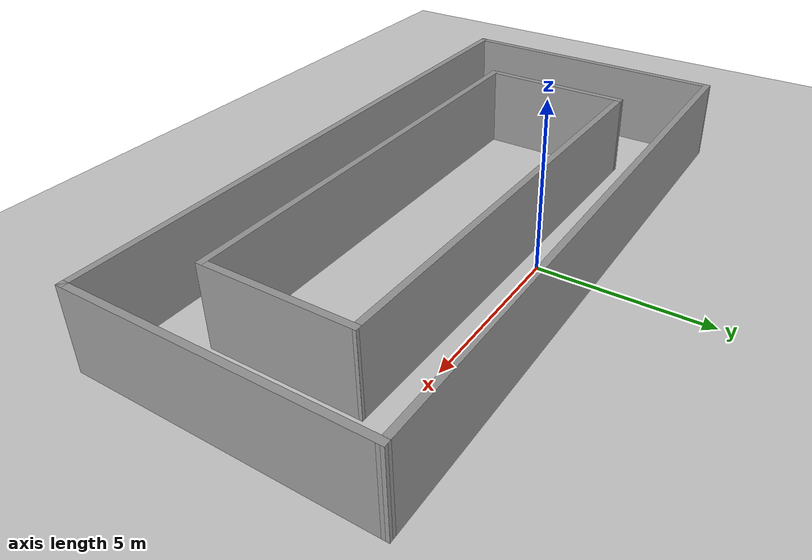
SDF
<sdf version="1.4">
 <world name="default">
  <light name="sun" type="directional">
   <pose>0 0 10 0 -0 0</pose>
   <diffuse>0.8 0.8 0.8 1</diffuse>
   <specular>0.2 0.2 0.2 1</specular>
   <attenuation>
    <range>1000</range>
    <constant>0.9</constant>
    <linear>0.01</linear>
    <quadratic>0.001</quadratic>
   </attenuation>
   <direction>-0.5 0.1 -0.9</direction>
  </light>
  <model name="ground_plane">
   <static>1</static>
   <link name="link">
    <collision name="collision">
     <geometry><plane><normal>0 0 1</normal><size>100 100</size></plane></geometry>
     <surface><friction><ode><mu>100</mu><mu2>50</mu2></ode></friction></surface>
    </collision>
    <visual name="visual">
     <cast_shadows>0</cast_shadows>
     <geometry><plane><normal>0 0 1</normal><size>100 100</size></plane></geometry>
     <material>
      <script><uri>file://media/materials/scripts/gazebo.material</uri><name>Gazebo/Grey</name></script>
     </material>
    </visual>
    <velocity_decay><linear>0</linear><angular>0</angular></velocity_decay>
   </link>
  </model>
  <physics type="ode">
   <max_step_size>0.001</max_step_size>
   <real_time_factor>1</real_time_factor>
   <real_time_update_rate>1000</real_time_update_rate>
   <gravity>0 0 -9.8</gravity>
  </physics>
  <scene><ambient>0.4 0.4 0.4 1</ambient><background>0.7 0.7 0.7 1</background><shadows>1</shadows></scene>
  <spherical_coordinates>
   <surface_model>EARTH_WGS84</surface_model>
   <latitude_deg>0</latitude_deg>
   <longitude_deg>0</longitude_deg>
   <elevation>0</elevation>
   <heading_deg>0</heading_deg>
  </spherical_coordinates>
  <model name="BuildingDefaultName">
   <link name="Wall_0">
    <collision name="Wall_0_Collision">
     <geometry><box><size>8.68893 0.2 2.5</size></box></geometry>
     <pose>0 0 1.25 0 -0 0</pose>
    </collision>
    <visual name="Wall_0_Visual">
     <pose>0 0 1.25 0 -0 0</pose>
     <geometry><box><size>8.68893 0.2 2.5</size></box></geometry>
     <material>
      <script><uri>file://media/materials/scripts/gazebo.material</uri><name>Gazebo/Grey</name></script>
     </material>
    </visual>
    <velocity_decay><linear>0</linear><angular>0</angular></velocity_decay>
    <pose>-9.03026 -2.72452 0 0 0 -1.5708</pose>
   </link>
   <link name="Wall_1">
    <collision name="Wall_1_Collision">
     <geometry><box><size>18.4732 0.2 2.5</size></box></geometry>
     <pose>0 0 1.25 0 -0 0</pose>
    </collision>
    <visual name="Wall_1_Visual">
     <pose>0 0 1.25 0 -0 0</pose>
     <geometry><box><size>18.4732 0.2 2.5</size></box></geometry>
     <material>
      <script><uri>file://media/materials/scripts/gazebo.material</uri><name>Gazebo/Grey</name></script>
     </material>
    </visual>
    <velocity_decay><linear>0</linear><angular>0</angular></velocity_decay>
    <pose>0.106327 -6.96899 0 0 -0 0</pose>
   </link>
   <link name="Wall_2">
    <collision name="Wall_2_Collision">
     <geometry><box><size>8.78145 0.2 2.5</size></box></geometry>
     <pose>0 0 1.25 0 -0 0</pose>
    </collision>
    <visual name="Wall_2_Visual">
     <pose>0 0 1.25 0 -0 0</pose>
     <geometry><box><size>8.78145 0.2 2.5</size></box></geometry>
     <material>
      <script><uri>file://media/materials/scripts/gazebo.material</uri><name>Gazebo/Grey</name></script>
     </material>
    </visual>
    <velocity_decay><linear>0</linear><angular>0</angular></velocity_decay>
    <pose>9.24292 -2.67826 0 0 -0 1.5708</pose>
   </link>
   <link name="Wall_3">
    <collision name="Wall_3_Collision">
     <geometry><box><size>18.4734 0.2 2.5</size></box></geometry>
     <pose>0 0 1.25 0 -0 0</pose>
    </collision>
    <visual name="Wall_3_Visual">
     <pose>0 0 1.25 0 -0 0</pose>
     <geometry><box><size>18.4734 0.2 2.5</size></box></geometry>
     <material>
      <script><uri>file://media/materials/scripts/gazebo.material</uri><name>Gazebo/Grey</name></script>
     </material>
    </visual>
    <velocity_decay><linear>0</linear><angular>0</angular></velocity_decay>
    <pose>0.106327 1.5662 0 0 0 -3.13653</pose>
   </link>
   <link name="Wall_5">
    <collision name="Wall_5_Collision">
     <geometry><box><size>4.7336 0.2 2.5</size></box></geometry>
     <pose>0 0 1.25 0 -0 0</pose>
    </collision>
    <visual name="Wall_5_Visual">
     <pose>0 0 1.25 0 -0 0</pose>
     <geometry><box><size>4.7336 0.2 2.5</size></box></geometry>
     <material>
      <script><uri>file://media/materials/scripts/gazebo.material</uri><name>Gazebo/Grey</name></script>
     </material>
    </visual>
    <velocity_decay><linear>0</linear><angular>0</angular></velocity_decay>
    <pose>-6.4165 -2.75922 0 0 0 -1.5708</pose>
   </link>
   <link name="Wall_6">
    <collision name="Wall_6_Collision">
     <geometry><box><size>13.662 0.2 2.5</size></box></geometry>
     <pose>0 0 1.25 0 -0 0</pose>
    </collision>
    <visual name="Wall_6_Visual">
     <pose>0 0 1.25 0 -0 0</pose>
     <geometry><box><size>13.662 0.2 2.5</size></box></geometry>
     <material>
      <script><uri>file://media/materials/scripts/gazebo.material</uri><name>Gazebo/Grey</name></script>
     </material>
    </visual>
    <velocity_decay><linear>0</linear><angular>0</angular></velocity_decay>
    <pose>0.314503 -5.02602 0 0 -0 0</pose>
   </link>
   <link name="Wall_7">
    <collision name="Wall_7_Collision">
     <geometry><box><size>4.54855 0.2 2.5</size></box></geometry>
     <pose>0 0 1.25 0 -0 0</pose>
    </collision>
    <visual name="Wall_7_Visual">
     <pose>0 0 1.25 0 -0 0</pose>
     <geometry><box><size>4.54855 0.2 2.5</size></box></geometry>
     <material>
      <script><uri>file://media/materials/scripts/gazebo.material</uri><name>Gazebo/Grey</name></script>
     </material>
    </visual>
    <velocity_decay><linear>0</linear><angular>0</angular></velocity_decay>
    <pose>7.04551 -2.85174 0 0 -0 1.5708</pose>
   </link>
   <link name="Wall_8">
    <collision name="Wall_8_Collision">
     <geometry><box><size>13.6633 0.2 2.5</size></box></geometry>
     <pose>0 0 1.25 0 -0 0</pose>
    </collision>
    <visual name="Wall_8_Visual">
     <pose>0 0 1.25 0 -0 0</pose>
     <geometry><box><size>13.6633 0.2 2.5</size></box></geometry>
     <material>
      <script><uri>file://media/materials/scripts/gazebo.material</uri><name>Gazebo/Grey</name></script>
     </material>
    </visual>
    <velocity_decay><linear>0</linear><angular>0</angular></velocity_decay>
    <pose>0.314503 -0.584944 0 0 -0 3.12785</pose>
   </link>
   <static>1</static>
  </model>
 </world>
</sdf>
